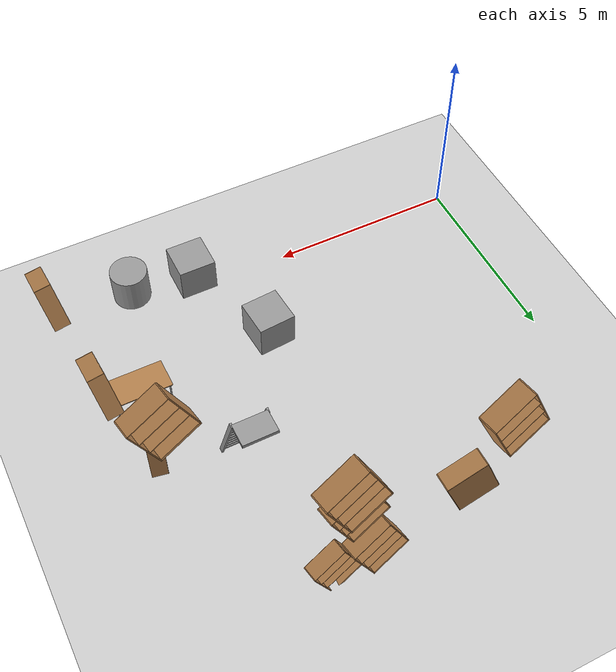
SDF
<sdf version="1.6">
 <world name="default">
  <model name="ground_plane">
   <static>1</static>
   <link name="link">
    <collision name="collision">
     <geometry><plane><normal>0 0 1</normal><size>100 100</size></plane></geometry>
     <surface><friction><ode><mu>100</mu><mu2>50</mu2></ode></friction></surface>
    </collision>
    <visual name="visual">
     <cast_shadows>0</cast_shadows>
     <geometry><plane><normal>0 0 1</normal><size>100 100</size></plane></geometry>
     <material>
      <script><uri>file://media/materials/scripts/gazebo.material</uri><name>Gazebo/Grey</name></script>
     </material>
    </visual>
   </link>
  </model>
  <model name="bookshelf_1">
   <static>1</static>
   <link name="link">
    <inertial><mass>1</mass></inertial>
    <collision name="back">
     <pose>0 0.005 0.6 0 -0 0</pose>
     <geometry><box><size>0.9 0.01 1.2</size></box></geometry>
    </collision>
    <visual name="visual1">
     <pose>0 0.005 0.6 0 -0 0</pose>
     <geometry><box><size>0.9 0.01 1.2</size></box></geometry>
     <material>
      <script><uri>file://media/materials/scripts/gazebo.material</uri><name>Gazebo/Wood</name></script>
     </material>
    </visual>
    <collision name="left_side">
     <pose>0.45 -0.195 0.6 0 -0 0</pose>
     <geometry><box><size>0.02 0.4 1.2</size></box></geometry>
    </collision>
    <visual name="visual2">
     <pose>0.45 -0.195 0.6 0 -0 0</pose>
     <geometry><box><size>0.02 0.4 1.2</size></box></geometry>
     <material>
      <script><uri>file://media/materials/scripts/gazebo.material</uri><name>Gazebo/Wood</name></script>
     </material>
    </visual>
    <collision name="right_side">
     <pose>-0.45 -0.195 0.6 0 -0 0</pose>
     <geometry><box><size>0.02 0.4 1.2</size></box></geometry>
    </collision>
    <visual name="visual3">
     <pose>-0.45 -0.195 0.6 0 -0 0</pose>
     <geometry><box><size>0.02 0.4 1.2</size></box></geometry>
     <material>
      <script><uri>file://media/materials/scripts/gazebo.material</uri><name>Gazebo/Wood</name></script>
     </material>
    </visual>
    <collision name="bottom">
     <pose>0 -0.195 0.03 0 -0 0</pose>
     <geometry><box><size>0.88 0.4 0.06</size></box></geometry>
    </collision>
    <visual name="visual4">
     <pose>0 -0.195 0.03 0 -0 0</pose>
     <geometry><box><size>0.88 0.4 0.06</size></box></geometry>
     <material>
      <script><uri>file://media/materials/scripts/gazebo.material</uri><name>Gazebo/Wood</name></script>
     </material>
    </visual>
    <collision name="top">
     <pose>0 -0.195 1.19 0 -0 0</pose>
     <geometry><box><size>0.88 0.4 0.02</size></box></geometry>
    </collision>
    <visual name="visual5">
     <pose>0 -0.195 1.19 0 -0 0</pose>
     <geometry><box><size>0.88 0.4 0.02</size></box></geometry>
     <material>
      <script><uri>file://media/materials/scripts/gazebo.material</uri><name>Gazebo/Wood</name></script>
     </material>
    </visual>
    <collision name="low_shelf">
     <pose>0 -0.195 0.43 0 -0 0</pose>
     <geometry><box><size>0.88 0.4 0.02</size></box></geometry>
    </collision>
    <visual name="visual6">
     <pose>0 -0.195 0.43 0 -0 0</pose>
     <geometry><box><size>0.88 0.4 0.02</size></box></geometry>
     <material>
      <script><uri>file://media/materials/scripts/gazebo.material</uri><name>Gazebo/Wood</name></script>
     </material>
    </visual>
    <collision name="high_shelf">
     <pose>0 -0.195 0.8 0 -0 0</pose>
     <geometry><box><size>0.88 0.4 0.02</size></box></geometry>
    </collision>
    <visual name="visual7">
     <pose>0 -0.195 0.8 0 -0 0</pose>
     <geometry><box><size>0.88 0.4 0.02</size></box></geometry>
     <material>
      <script><uri>file://media/materials/scripts/gazebo.material</uri><name>Gazebo/Wood</name></script>
     </material>
    </visual>
   </link>
   <pose>10.3942 4.67177 0.408899 0 -0 1.38737</pose>
  </model>
  <model name="unit_cylinder_0">
   <pose>9.25384 -0.552257 0.599997 1e-06 -6e-06 -4e-06</pose>
   <link name="link">
    <inertial>
     <mass>1</mass>
     <inertia><ixx>0.145833</ixx><ixy>0</ixy><ixz>0</ixz><iyy>0.145833</iyy><iyz>0</iyz><izz>0.125</izz></inertia>
    </inertial>
    <collision name="collision">
     <geometry><cylinder><radius>0.5</radius><length>1</length></cylinder></geometry>
    </collision>
    <visual name="visual">
     <geometry><cylinder><radius>0.5</radius><length>1</length></cylinder></geometry>
     <material>
      <script><name>Gazebo/Grey</name><uri>file://media/materials/scripts/gazebo.material</uri></script>
     </material>
    </visual>
   </link>
  </model>
  <model name="unit_box_1">
   <pose>7.5557 -0.384147 0.499995 1e-05 -0 -2.4e-05</pose>
   <link name="link">
    <inertial>
     <mass>1</mass>
     <inertia>
      <ixx>0.166667</ixx>
      <ixy>0</ixy>
      <ixz>0</ixz>
      <iyy>0.166667</iyy>
      <iyz>0</iyz>
      <izz>0.166667</izz>
     </inertia>
    </inertial>
    <collision name="collision"><geometry><box><size>1 1 1</size></box></geometry></collision>
    <visual name="visual">
     <geometry><box><size>1 1 1</size></box></geometry>
     <material>
      <script><name>Gazebo/Grey</name><uri>file://media/materials/scripts/gazebo.material</uri></script>
     </material>
    </visual>
   </link>
  </model>
  <model name="bookshelf_0_clone_0">
   <static>1</static>
   <link name="link">
    <inertial><mass>1</mass></inertial>
    <collision name="back">
     <pose>0 0.005 0.6 0 -0 0</pose>
     <geometry><box><size>0.9 0.01 1.2</size></box></geometry>
    </collision>
    <visual name="visual1">
     <pose>0 0.005 0.6 0 -0 0</pose>
     <geometry><box><size>0.9 0.01 1.2</size></box></geometry>
     <material>
      <script><uri>file://media/materials/scripts/gazebo.material</uri><name>Gazebo/Wood</name></script>
     </material>
    </visual>
    <collision name="left_side">
     <pose>0.45 -0.195 0.6 0 -0 0</pose>
     <geometry><box><size>0.02 0.4 1.2</size></box></geometry>
    </collision>
    <visual name="visual2">
     <pose>0.45 -0.195 0.6 0 -0 0</pose>
     <geometry><box><size>0.02 0.4 1.2</size></box></geometry>
     <material>
      <script><uri>file://media/materials/scripts/gazebo.material</uri><name>Gazebo/Wood</name></script>
     </material>
    </visual>
    <collision name="right_side">
     <pose>-0.45 -0.195 0.6 0 -0 0</pose>
     <geometry><box><size>0.02 0.4 1.2</size></box></geometry>
    </collision>
    <visual name="visual3">
     <pose>-0.45 -0.195 0.6 0 -0 0</pose>
     <geometry><box><size>0.02 0.4 1.2</size></box></geometry>
     <material>
      <script><uri>file://media/materials/scripts/gazebo.material</uri><name>Gazebo/Wood</name></script>
     </material>
    </visual>
    <collision name="bottom">
     <pose>0 -0.195 0.03 0 -0 0</pose>
     <geometry><box><size>0.88 0.4 0.06</size></box></geometry>
    </collision>
    <visual name="visual4">
     <pose>0 -0.195 0.03 0 -0 0</pose>
     <geometry><box><size>0.88 0.4 0.06</size></box></geometry>
     <material>
      <script><uri>file://media/materials/scripts/gazebo.material</uri><name>Gazebo/Wood</name></script>
     </material>
    </visual>
    <collision name="top">
     <pose>0 -0.195 1.19 0 -0 0</pose>
     <geometry><box><size>0.88 0.4 0.02</size></box></geometry>
    </collision>
    <visual name="visual5">
     <pose>0 -0.195 1.19 0 -0 0</pose>
     <geometry><box><size>0.88 0.4 0.02</size></box></geometry>
     <material>
      <script><uri>file://media/materials/scripts/gazebo.material</uri><name>Gazebo/Wood</name></script>
     </material>
    </visual>
    <collision name="low_shelf">
     <pose>0 -0.195 0.43 0 -0 0</pose>
     <geometry><box><size>0.88 0.4 0.02</size></box></geometry>
    </collision>
    <visual name="visual6">
     <pose>0 -0.195 0.43 0 -0 0</pose>
     <geometry><box><size>0.88 0.4 0.02</size></box></geometry>
     <material>
      <script><uri>file://media/materials/scripts/gazebo.material</uri><name>Gazebo/Wood</name></script>
     </material>
    </visual>
    <collision name="high_shelf">
     <pose>0 -0.195 0.8 0 -0 0</pose>
     <geometry><box><size>0.88 0.4 0.02</size></box></geometry>
    </collision>
    <visual name="visual7">
     <pose>0 -0.195 0.8 0 -0 0</pose>
     <geometry><box><size>0.88 0.4 0.02</size></box></geometry>
     <material>
      <script><uri>file://media/materials/scripts/gazebo.material</uri><name>Gazebo/Wood</name></script>
     </material>
    </visual>
   </link>
   <pose>5.69398 10.33 4.06756 0 0.357608 0</pose>
  </model>
  <model name="unit_box_1_clone">
   <pose>6.48955 2.22059 0.5 0 -0 0.074709</pose>
   <link name="unit_box_1_clone::link">
    <inertial>
     <mass>1</mass>
     <inertia>
      <ixx>0.166667</ixx>
      <ixy>0</ixy>
      <ixz>0</ixz>
      <iyy>0.166667</iyy>
      <iyz>0</iyz>
      <izz>0.166667</izz>
     </inertia>
    </inertial>
    <collision name="collision"><geometry><box><size>1 1 1</size></box></geometry></collision>
    <visual name="visual">
     <geometry><box><size>1 1 1</size></box></geometry>
     <material>
      <script><name>Gazebo/Grey</name><uri>file://media/materials/scripts/gazebo.material</uri></script>
     </material>
    </visual>
   </link>
  </model>
  <model name="bookshelf_0_clone_1_clone_2_clone">
   <static>1</static>
   <link name="link">
    <inertial><mass>1</mass></inertial>
    <collision name="back">
     <pose>0 0.005 0.6 0 -0 0</pose>
     <geometry><box><size>0.9 0.01 1.2</size></box></geometry>
    </collision>
    <visual name="visual1">
     <pose>0 0.005 0.6 0 -0 0</pose>
     <geometry><box><size>0.9 0.01 1.2</size></box></geometry>
     <material>
      <script><uri>file://media/materials/scripts/gazebo.material</uri><name>Gazebo/Wood</name></script>
     </material>
    </visual>
    <collision name="left_side">
     <pose>0.45 -0.195 0.6 0 -0 0</pose>
     <geometry><box><size>0.02 0.4 1.2</size></box></geometry>
    </collision>
    <visual name="visual2">
     <pose>0.45 -0.195 0.6 0 -0 0</pose>
     <geometry><box><size>0.02 0.4 1.2</size></box></geometry>
     <material>
      <script><uri>file://media/materials/scripts/gazebo.material</uri><name>Gazebo/Wood</name></script>
     </material>
    </visual>
    <collision name="right_side">
     <pose>-0.45 -0.195 0.6 0 -0 0</pose>
     <geometry><box><size>0.02 0.4 1.2</size></box></geometry>
    </collision>
    <visual name="visual3">
     <pose>-0.45 -0.195 0.6 0 -0 0</pose>
     <geometry><box><size>0.02 0.4 1.2</size></box></geometry>
     <material>
      <script><uri>file://media/materials/scripts/gazebo.material</uri><name>Gazebo/Wood</name></script>
     </material>
    </visual>
    <collision name="bottom">
     <pose>0 -0.195 0.03 0 -0 0</pose>
     <geometry><box><size>0.88 0.4 0.06</size></box></geometry>
    </collision>
    <visual name="visual4">
     <pose>0 -0.195 0.03 0 -0 0</pose>
     <geometry><box><size>0.88 0.4 0.06</size></box></geometry>
     <material>
      <script><uri>file://media/materials/scripts/gazebo.material</uri><name>Gazebo/Wood</name></script>
     </material>
    </visual>
    <collision name="top">
     <pose>0 -0.195 1.19 0 -0 0</pose>
     <geometry><box><size>0.88 0.4 0.02</size></box></geometry>
    </collision>
    <visual name="visual5">
     <pose>0 -0.195 1.19 0 -0 0</pose>
     <geometry><box><size>0.88 0.4 0.02</size></box></geometry>
     <material>
      <script><uri>file://media/materials/scripts/gazebo.material</uri><name>Gazebo/Wood</name></script>
     </material>
    </visual>
    <collision name="low_shelf">
     <pose>0 -0.195 0.43 0 -0 0</pose>
     <geometry><box><size>0.88 0.4 0.02</size></box></geometry>
    </collision>
    <visual name="visual6">
     <pose>0 -0.195 0.43 0 -0 0</pose>
     <geometry><box><size>0.88 0.4 0.02</size></box></geometry>
     <material>
      <script><uri>file://media/materials/scripts/gazebo.material</uri><name>Gazebo/Wood</name></script>
     </material>
    </visual>
    <collision name="high_shelf">
     <pose>0 -0.195 0.8 0 -0 0</pose>
     <geometry><box><size>0.88 0.4 0.02</size></box></geometry>
    </collision>
    <visual name="visual7">
     <pose>0 -0.195 0.8 0 -0 0</pose>
     <geometry><box><size>0.88 0.4 0.02</size></box></geometry>
     <material>
      <script><uri>file://media/materials/scripts/gazebo.material</uri><name>Gazebo/Wood</name></script>
     </material>
    </visual>
   </link>
   <pose>11.3251 1.36662 2.70391 0.126952 -0.31446 1.5878</pose>
  </model>
  <model name="bookshelf_0_clone_1_clone_2_clone_0">
   <static>1</static>
   <link name="link">
    <inertial><mass>1</mass></inertial>
    <collision name="back">
     <pose>0 0.005 0.6 0 -0 0</pose>
     <geometry><box><size>0.9 0.01 1.2</size></box></geometry>
    </collision>
    <visual name="visual1">
     <pose>0 0.005 0.6 0 -0 0</pose>
     <geometry><box><size>0.9 0.01 1.2</size></box></geometry>
     <material>
      <script><uri>file://media/materials/scripts/gazebo.material</uri><name>Gazebo/Wood</name></script>
     </material>
    </visual>
    <collision name="left_side">
     <pose>0.45 -0.195 0.6 0 -0 0</pose>
     <geometry><box><size>0.02 0.4 1.2</size></box></geometry>
    </collision>
    <visual name="visual2">
     <pose>0.45 -0.195 0.6 0 -0 0</pose>
     <geometry><box><size>0.02 0.4 1.2</size></box></geometry>
     <material>
      <script><uri>file://media/materials/scripts/gazebo.material</uri><name>Gazebo/Wood</name></script>
     </material>
    </visual>
    <collision name="right_side">
     <pose>-0.45 -0.195 0.6 0 -0 0</pose>
     <geometry><box><size>0.02 0.4 1.2</size></box></geometry>
    </collision>
    <visual name="visual3">
     <pose>-0.45 -0.195 0.6 0 -0 0</pose>
     <geometry><box><size>0.02 0.4 1.2</size></box></geometry>
     <material>
      <script><uri>file://media/materials/scripts/gazebo.material</uri><name>Gazebo/Wood</name></script>
     </material>
    </visual>
    <collision name="bottom">
     <pose>0 -0.195 0.03 0 -0 0</pose>
     <geometry><box><size>0.88 0.4 0.06</size></box></geometry>
    </collision>
    <visual name="visual4">
     <pose>0 -0.195 0.03 0 -0 0</pose>
     <geometry><box><size>0.88 0.4 0.06</size></box></geometry>
     <material>
      <script><uri>file://media/materials/scripts/gazebo.material</uri><name>Gazebo/Wood</name></script>
     </material>
    </visual>
    <collision name="top">
     <pose>0 -0.195 1.19 0 -0 0</pose>
     <geometry><box><size>0.88 0.4 0.02</size></box></geometry>
    </collision>
    <visual name="visual5">
     <pose>0 -0.195 1.19 0 -0 0</pose>
     <geometry><box><size>0.88 0.4 0.02</size></box></geometry>
     <material>
      <script><uri>file://media/materials/scripts/gazebo.material</uri><name>Gazebo/Wood</name></script>
     </material>
    </visual>
    <collision name="low_shelf">
     <pose>0 -0.195 0.43 0 -0 0</pose>
     <geometry><box><size>0.88 0.4 0.02</size></box></geometry>
    </collision>
    <visual name="visual6">
     <pose>0 -0.195 0.43 0 -0 0</pose>
     <geometry><box><size>0.88 0.4 0.02</size></box></geometry>
     <material>
      <script><uri>file://media/materials/scripts/gazebo.material</uri><name>Gazebo/Wood</name></script>
     </material>
    </visual>
    <collision name="high_shelf">
     <pose>0 -0.195 0.8 0 -0 0</pose>
     <geometry><box><size>0.88 0.4 0.02</size></box></geometry>
    </collision>
    <visual name="visual7">
     <pose>0 -0.195 0.8 0 -0 0</pose>
     <geometry><box><size>0.88 0.4 0.02</size></box></geometry>
     <material>
      <script><uri>file://media/materials/scripts/gazebo.material</uri><name>Gazebo/Wood</name></script>
     </material>
    </visual>
   </link>
   <pose>11.0686 4.1971 2.70391 0.126952 -0.31446 1.5878</pose>
  </model>
  <model name="table">
   <static>1</static>
   <link name="link">
    <collision name="surface">
     <pose>0 0 1 0 -0 0</pose>
     <geometry><box><size>1.5 0.8 0.03</size></box></geometry>
     <surface><friction><ode><mu>0.6</mu><mu2>0.6</mu2></ode></friction></surface>
    </collision>
    <visual name="visual1">
     <pose>0 0 1 0 -0 0</pose>
     <geometry><box><size>1.5 0.8 0.03</size></box></geometry>
     <material>
      <script><uri>file://media/materials/scripts/gazebo.material</uri><name>Gazebo/Wood</name></script>
     </material>
    </visual>
    <collision name="front_left_leg">
     <pose>0.68 0.38 0.5 0 -0 0</pose>
     <geometry><cylinder><radius>0.02</radius><length>1</length></cylinder></geometry>
    </collision>
    <visual name="front_left_leg">
     <pose>0.68 0.38 0.5 0 -0 0</pose>
     <geometry><cylinder><radius>0.02</radius><length>1</length></cylinder></geometry>
     <material>
      <script><uri>file://media/materials/scripts/gazebo.material</uri><name>Gazebo/Grey</name></script>
     </material>
    </visual>
    <collision name="front_right_leg">
     <pose>0.68 -0.38 0.5 0 -0 0</pose>
     <geometry><cylinder><radius>0.02</radius><length>1</length></cylinder></geometry>
    </collision>
    <visual name="front_right_leg">
     <pose>0.68 -0.38 0.5 0 -0 0</pose>
     <geometry><cylinder><radius>0.02</radius><length>1</length></cylinder></geometry>
     <material>
      <script><uri>file://media/materials/scripts/gazebo.material</uri><name>Gazebo/Grey</name></script>
     </material>
    </visual>
    <collision name="back_right_leg">
     <pose>-0.68 -0.38 0.5 0 -0 0</pose>
     <geometry><cylinder><radius>0.02</radius><length>1</length></cylinder></geometry>
    </collision>
    <visual name="back_right_leg">
     <pose>-0.68 -0.38 0.5 0 -0 0</pose>
     <geometry><cylinder><radius>0.02</radius><length>1</length></cylinder></geometry>
     <material>
      <script><uri>file://media/materials/scripts/gazebo.material</uri><name>Gazebo/Grey</name></script>
     </material>
    </visual>
    <collision name="back_left_leg">
     <pose>-0.68 0.38 0.5 0 -0 0</pose>
     <geometry><cylinder><radius>0.02</radius><length>1</length></cylinder></geometry>
    </collision>
    <visual name="back_left_leg">
     <pose>-0.68 0.38 0.5 0 -0 0</pose>
     <geometry><cylinder><radius>0.02</radius><length>1</length></cylinder></geometry>
     <material>
      <script><uri>file://media/materials/scripts/gazebo.material</uri><name>Gazebo/Grey</name></script>
     </material>
    </visual>
   </link>
   <pose>10.2814 2.83475 0 0 -0 0</pose>
  </model>
  <model name="ladder_70deg_0rails">
   <static>1</static>
   <link name="step0">
    <pose>0 0.097059 0.266667 0 -0 0</pose>
    <inertial>
     <mass>9.75482</mass>
     <inertia>
      <ixx>0.00957124</ixx>
      <iyy>0.65963</iyy>
      <izz>0.666842</izz>
      <ixy>0</ixy>
      <ixz>0</ixz>
      <iyz>0</iyz>
     </inertia>
    </inertial>
    <collision name="collision"><geometry><box><size>0.9 0.1016 0.0381</size></box></geometry></collision>
    <visual name="visual">
     <geometry><box><size>0.9 0.1016 0.0381</size></box></geometry>
     <material>
      <script><uri>file://media/materials/scripts/gazebo.material</uri><name>Gazebo/Grey</name></script>
     </material>
    </visual>
   </link>
   <link name="step1">
    <pose>0 0.194117 0.533333 0 -0 0</pose>
    <inertial>
     <mass>9.75482</mass>
     <inertia>
      <ixx>0.00957124</ixx>
      <iyy>0.65963</iyy>
      <izz>0.666842</izz>
      <ixy>0</ixy>
      <ixz>0</ixz>
      <iyz>0</iyz>
     </inertia>
    </inertial>
    <collision name="collision"><geometry><box><size>0.9 0.1016 0.0381</size></box></geometry></collision>
    <visual name="visual">
     <geometry><box><size>0.9 0.1016 0.0381</size></box></geometry>
     <material>
      <script><uri>file://media/materials/scripts/gazebo.material</uri><name>Gazebo/Grey</name></script>
     </material>
    </visual>
   </link>
   <link name="step2">
    <pose>0 0.291176 0.8 0 -0 0</pose>
    <inertial>
     <mass>9.75482</mass>
     <inertia>
      <ixx>0.00957124</ixx>
      <iyy>0.65963</iyy>
      <izz>0.666842</izz>
      <ixy>0</ixy>
      <ixz>0</ixz>
      <iyz>0</iyz>
     </inertia>
    </inertial>
    <collision name="collision"><geometry><box><size>0.9 0.1016 0.0381</size></box></geometry></collision>
    <visual name="visual">
     <geometry><box><size>0.9 0.1016 0.0381</size></box></geometry>
     <material>
      <script><uri>file://media/materials/scripts/gazebo.material</uri><name>Gazebo/Grey</name></script>
     </material>
    </visual>
   </link>
   <link name="step3">
    <pose>0 0.388235 1.06667 0 -0 0</pose>
    <inertial>
     <mass>9.75482</mass>
     <inertia>
      <ixx>0.00957124</ixx>
      <iyy>0.65963</iyy>
      <izz>0.666842</izz>
      <ixy>0</ixy>
      <ixz>0</ixz>
      <iyz>0</iyz>
     </inertia>
    </inertial>
    <collision name="collision"><geometry><box><size>0.9 0.1016 0.0381</size></box></geometry></collision>
    <visual name="visual">
     <geometry><box><size>0.9 0.1016 0.0381</size></box></geometry>
     <material>
      <script><uri>file://media/materials/scripts/gazebo.material</uri><name>Gazebo/Grey</name></script>
     </material>
    </visual>
   </link>
   <link name="step4">
    <pose>0 0.485294 1.33333 0 -0 0</pose>
    <inertial>
     <mass>9.75482</mass>
     <inertia>
      <ixx>0.00957124</ixx>
      <iyy>0.65963</iyy>
      <izz>0.666842</izz>
      <ixy>0</ixy>
      <ixz>0</ixz>
      <iyz>0</iyz>
     </inertia>
    </inertial>
    <collision name="collision"><geometry><box><size>0.9 0.1016 0.0381</size></box></geometry></collision>
    <visual name="visual">
     <geometry><box><size>0.9 0.1016 0.0381</size></box></geometry>
     <material>
      <script><uri>file://media/materials/scripts/gazebo.material</uri><name>Gazebo/Grey</name></script>
     </material>
    </visual>
   </link>
   <link name="step5">
    <pose>0 0.582352 1.6 0 -0 0</pose>
    <inertial>
     <mass>9.75482</mass>
     <inertia>
      <ixx>0.00957124</ixx>
      <iyy>0.65963</iyy>
      <izz>0.666842</izz>
      <ixy>0</ixy>
      <ixz>0</ixz>
      <iyz>0</iyz>
     </inertia>
    </inertial>
    <collision name="collision"><geometry><box><size>0.9 0.1016 0.0381</size></box></geometry></collision>
    <visual name="visual">
     <geometry><box><size>0.9 0.1016 0.0381</size></box></geometry>
     <material>
      <script><uri>file://media/materials/scripts/gazebo.material</uri><name>Gazebo/Grey</name></script>
     </material>
    </visual>
   </link>
   <link name="step6">
    <pose>0 0.679411 1.86667 0 -0 0</pose>
    <inertial>
     <mass>9.75482</mass>
     <inertia>
      <ixx>0.00957124</ixx>
      <iyy>0.65963</iyy>
      <izz>0.666842</izz>
      <ixy>0</ixy>
      <ixz>0</ixz>
      <iyz>0</iyz>
     </inertia>
    </inertial>
    <collision name="collision"><geometry><box><size>0.9 0.1016 0.0381</size></box></geometry></collision>
    <visual name="visual">
     <geometry><box><size>0.9 0.1016 0.0381</size></box></geometry>
     <material>
      <script><uri>file://media/materials/scripts/gazebo.material</uri><name>Gazebo/Grey</name></script>
     </material>
    </visual>
   </link>
   <link name="step7">
    <pose>0 0.77647 2.13333 0 -0 0</pose>
    <inertial>
     <mass>9.75482</mass>
     <inertia>
      <ixx>0.00957124</ixx>
      <iyy>0.65963</iyy>
      <izz>0.666842</izz>
      <ixy>0</ixy>
      <ixz>0</ixz>
      <iyz>0</iyz>
     </inertia>
    </inertial>
    <collision name="collision"><geometry><box><size>0.9 0.1016 0.0381</size></box></geometry></collision>
    <visual name="visual">
     <geometry><box><size>0.9 0.1016 0.0381</size></box></geometry>
     <material>
      <script><uri>file://media/materials/scripts/gazebo.material</uri><name>Gazebo/Grey</name></script>
     </material>
    </visual>
   </link>
   <link name="landing">
    <pose>0 1.17353 2.4 0 -0 0</pose>
    <inertial>
     <mass>57.6072</mass>
     <inertia><ixx>1.73518</ixx><iyy>3.89545</iyy><izz>5.6167</izz><ixy>0</ixy><ixz>0</ixz><iyz>0</iyz></inertia>
    </inertial>
    <collision name="collision"><geometry><box><size>0.9 0.6 0.1016</size></box></geometry></collision>
    <visual name="visual">
     <geometry><box><size>0.9 0.6 0.1016</size></box></geometry>
     <material>
      <script><uri>file://media/materials/scripts/gazebo.material</uri><name>Gazebo/Grey</name></script>
     </material>
    </visual>
   </link>
   <link name="left_side_wall">
    <pose>-0.45 0.436764 1.2 1.22173 -0 0</pose>
    <collision name="collision"><geometry><box><size>0.0508 2.63403 0.13</size></box></geometry></collision>
    <visual name="visual">
     <geometry><box><size>0.0508 2.63403 0.13</size></box></geometry>
     <material>
      <script><uri>file://media/materials/scripts/gazebo.material</uri><name>Gazebo/Grey</name></script>
     </material>
    </visual>
   </link>
   <link name="right_side_wall">
    <pose>0.45 0.436764 1.2 1.22173 -0 0</pose>
    <collision name="collision"><geometry><box><size>0.0508 2.63403 0.13</size></box></geometry></collision>
    <visual name="visual">
     <geometry><box><size>0.0508 2.63403 0.13</size></box></geometry>
     <material>
      <script><uri>file://media/materials/scripts/gazebo.material</uri><name>Gazebo/Grey</name></script>
     </material>
    </visual>
   </link>
   <pose>8.57354 4.87468 0 0 -0 0</pose>
  </model>
  <model name="bookshelf_2_clone_3">
   <static>1</static>
   <link name="link">
    <inertial><mass>1</mass></inertial>
    <collision name="back">
     <pose>0 0.005 0.6 0 -0 0</pose>
     <geometry><box><size>0.9 0.01 1.2</size></box></geometry>
    </collision>
    <visual name="visual1">
     <pose>0 0.005 0.6 0 -0 0</pose>
     <geometry><box><size>0.9 0.01 1.2</size></box></geometry>
     <material>
      <script><uri>file://media/materials/scripts/gazebo.material</uri><name>Gazebo/Wood</name></script>
     </material>
    </visual>
    <collision name="left_side">
     <pose>0.45 -0.195 0.6 0 -0 0</pose>
     <geometry><box><size>0.02 0.4 1.2</size></box></geometry>
    </collision>
    <visual name="visual2">
     <pose>0.45 -0.195 0.6 0 -0 0</pose>
     <geometry><box><size>0.02 0.4 1.2</size></box></geometry>
     <material>
      <script><uri>file://media/materials/scripts/gazebo.material</uri><name>Gazebo/Wood</name></script>
     </material>
    </visual>
    <collision name="right_side">
     <pose>-0.45 -0.195 0.6 0 -0 0</pose>
     <geometry><box><size>0.02 0.4 1.2</size></box></geometry>
    </collision>
    <visual name="visual3">
     <pose>-0.45 -0.195 0.6 0 -0 0</pose>
     <geometry><box><size>0.02 0.4 1.2</size></box></geometry>
     <material>
      <script><uri>file://media/materials/scripts/gazebo.material</uri><name>Gazebo/Wood</name></script>
     </material>
    </visual>
    <collision name="bottom">
     <pose>0 -0.195 0.03 0 -0 0</pose>
     <geometry><box><size>0.88 0.4 0.06</size></box></geometry>
    </collision>
    <visual name="visual4">
     <pose>0 -0.195 0.03 0 -0 0</pose>
     <geometry><box><size>0.88 0.4 0.06</size></box></geometry>
     <material>
      <script><uri>file://media/materials/scripts/gazebo.material</uri><name>Gazebo/Wood</name></script>
     </material>
    </visual>
    <collision name="top">
     <pose>0 -0.195 1.19 0 -0 0</pose>
     <geometry><box><size>0.88 0.4 0.02</size></box></geometry>
    </collision>
    <visual name="visual5">
     <pose>0 -0.195 1.19 0 -0 0</pose>
     <geometry><box><size>0.88 0.4 0.02</size></box></geometry>
     <material>
      <script><uri>file://media/materials/scripts/gazebo.material</uri><name>Gazebo/Wood</name></script>
     </material>
    </visual>
    <collision name="low_shelf">
     <pose>0 -0.195 0.43 0 -0 0</pose>
     <geometry><box><size>0.88 0.4 0.02</size></box></geometry>
    </collision>
    <visual name="visual6">
     <pose>0 -0.195 0.43 0 -0 0</pose>
     <geometry><box><size>0.88 0.4 0.02</size></box></geometry>
     <material>
      <script><uri>file://media/materials/scripts/gazebo.material</uri><name>Gazebo/Wood</name></script>
     </material>
    </visual>
    <collision name="high_shelf">
     <pose>0 -0.195 0.8 0 -0 0</pose>
     <geometry><box><size>0.88 0.4 0.02</size></box></geometry>
    </collision>
    <visual name="visual7">
     <pose>0 -0.195 0.8 0 -0 0</pose>
     <geometry><box><size>0.88 0.4 0.02</size></box></geometry>
     <material>
      <script><uri>file://media/materials/scripts/gazebo.material</uri><name>Gazebo/Wood</name></script>
     </material>
    </visual>
   </link>
   <pose>7.78565 10.1238 3.65744 -0.077915 -0.400957 -2.94416</pose>
  </model>
  <model name="bookshelf_2_clone_8">
   <static>1</static>
   <link name="link">
    <inertial><mass>1</mass></inertial>
    <collision name="back">
     <pose>0 0.005 0.6 0 -0 0</pose>
     <geometry><box><size>0.9 0.01 1.2</size></box></geometry>
    </collision>
    <visual name="visual1">
     <pose>0 0.005 0.6 0 -0 0</pose>
     <geometry><box><size>0.9 0.01 1.2</size></box></geometry>
     <material>
      <script><uri>file://media/materials/scripts/gazebo.material</uri><name>Gazebo/Wood</name></script>
     </material>
    </visual>
    <collision name="left_side">
     <pose>0.45 -0.195 0.6 0 -0 0</pose>
     <geometry><box><size>0.02 0.4 1.2</size></box></geometry>
    </collision>
    <visual name="visual2">
     <pose>0.45 -0.195 0.6 0 -0 0</pose>
     <geometry><box><size>0.02 0.4 1.2</size></box></geometry>
     <material>
      <script><uri>file://media/materials/scripts/gazebo.material</uri><name>Gazebo/Wood</name></script>
     </material>
    </visual>
    <collision name="right_side">
     <pose>-0.45 -0.195 0.6 0 -0 0</pose>
     <geometry><box><size>0.02 0.4 1.2</size></box></geometry>
    </collision>
    <visual name="visual3">
     <pose>-0.45 -0.195 0.6 0 -0 0</pose>
     <geometry><box><size>0.02 0.4 1.2</size></box></geometry>
     <material>
      <script><uri>file://media/materials/scripts/gazebo.material</uri><name>Gazebo/Wood</name></script>
     </material>
    </visual>
    <collision name="bottom">
     <pose>0 -0.195 0.03 0 -0 0</pose>
     <geometry><box><size>0.88 0.4 0.06</size></box></geometry>
    </collision>
    <visual name="visual4">
     <pose>0 -0.195 0.03 0 -0 0</pose>
     <geometry><box><size>0.88 0.4 0.06</size></box></geometry>
     <material>
      <script><uri>file://media/materials/scripts/gazebo.material</uri><name>Gazebo/Wood</name></script>
     </material>
    </visual>
    <collision name="top">
     <pose>0 -0.195 1.19 0 -0 0</pose>
     <geometry><box><size>0.88 0.4 0.02</size></box></geometry>
    </collision>
    <visual name="visual5">
     <pose>0 -0.195 1.19 0 -0 0</pose>
     <geometry><box><size>0.88 0.4 0.02</size></box></geometry>
     <material>
      <script><uri>file://media/materials/scripts/gazebo.material</uri><name>Gazebo/Wood</name></script>
     </material>
    </visual>
    <collision name="low_shelf">
     <pose>0 -0.195 0.43 0 -0 0</pose>
     <geometry><box><size>0.88 0.4 0.02</size></box></geometry>
    </collision>
    <visual name="visual6">
     <pose>0 -0.195 0.43 0 -0 0</pose>
     <geometry><box><size>0.88 0.4 0.02</size></box></geometry>
     <material>
      <script><uri>file://media/materials/scripts/gazebo.material</uri><name>Gazebo/Wood</name></script>
     </material>
    </visual>
    <collision name="high_shelf">
     <pose>0 -0.195 0.8 0 -0 0</pose>
     <geometry><box><size>0.88 0.4 0.02</size></box></geometry>
    </collision>
    <visual name="visual7">
     <pose>0 -0.195 0.8 0 -0 0</pose>
     <geometry><box><size>0.88 0.4 0.02</size></box></geometry>
     <material>
      <script><uri>file://media/materials/scripts/gazebo.material</uri><name>Gazebo/Wood</name></script>
     </material>
    </visual>
   </link>
   <pose>8.23776 10.0119 5.24739 -0.077915 -0.400957 -2.94416</pose>
  </model>
  <model name="bookshelf_2_clone_9">
   <static>1</static>
   <link name="link">
    <inertial><mass>1</mass></inertial>
    <collision name="back">
     <pose>0 0.005 0.6 0 -0 0</pose>
     <geometry><box><size>0.9 0.01 1.2</size></box></geometry>
    </collision>
    <visual name="visual1">
     <pose>0 0.005 0.6 0 -0 0</pose>
     <geometry><box><size>0.9 0.01 1.2</size></box></geometry>
     <material>
      <script><uri>file://media/materials/scripts/gazebo.material</uri><name>Gazebo/Wood</name></script>
     </material>
    </visual>
    <collision name="left_side">
     <pose>0.45 -0.195 0.6 0 -0 0</pose>
     <geometry><box><size>0.02 0.4 1.2</size></box></geometry>
    </collision>
    <visual name="visual2">
     <pose>0.45 -0.195 0.6 0 -0 0</pose>
     <geometry><box><size>0.02 0.4 1.2</size></box></geometry>
     <material>
      <script><uri>file://media/materials/scripts/gazebo.material</uri><name>Gazebo/Wood</name></script>
     </material>
    </visual>
    <collision name="right_side">
     <pose>-0.45 -0.195 0.6 0 -0 0</pose>
     <geometry><box><size>0.02 0.4 1.2</size></box></geometry>
    </collision>
    <visual name="visual3">
     <pose>-0.45 -0.195 0.6 0 -0 0</pose>
     <geometry><box><size>0.02 0.4 1.2</size></box></geometry>
     <material>
      <script><uri>file://media/materials/scripts/gazebo.material</uri><name>Gazebo/Wood</name></script>
     </material>
    </visual>
    <collision name="bottom">
     <pose>0 -0.195 0.03 0 -0 0</pose>
     <geometry><box><size>0.88 0.4 0.06</size></box></geometry>
    </collision>
    <visual name="visual4">
     <pose>0 -0.195 0.03 0 -0 0</pose>
     <geometry><box><size>0.88 0.4 0.06</size></box></geometry>
     <material>
      <script><uri>file://media/materials/scripts/gazebo.material</uri><name>Gazebo/Wood</name></script>
     </material>
    </visual>
    <collision name="top">
     <pose>0 -0.195 1.19 0 -0 0</pose>
     <geometry><box><size>0.88 0.4 0.02</size></box></geometry>
    </collision>
    <visual name="visual5">
     <pose>0 -0.195 1.19 0 -0 0</pose>
     <geometry><box><size>0.88 0.4 0.02</size></box></geometry>
     <material>
      <script><uri>file://media/materials/scripts/gazebo.material</uri><name>Gazebo/Wood</name></script>
     </material>
    </visual>
    <collision name="low_shelf">
     <pose>0 -0.195 0.43 0 -0 0</pose>
     <geometry><box><size>0.88 0.4 0.02</size></box></geometry>
    </collision>
    <visual name="visual6">
     <pose>0 -0.195 0.43 0 -0 0</pose>
     <geometry><box><size>0.88 0.4 0.02</size></box></geometry>
     <material>
      <script><uri>file://media/materials/scripts/gazebo.material</uri><name>Gazebo/Wood</name></script>
     </material>
    </visual>
    <collision name="high_shelf">
     <pose>0 -0.195 0.8 0 -0 0</pose>
     <geometry><box><size>0.88 0.4 0.02</size></box></geometry>
    </collision>
    <visual name="visual7">
     <pose>0 -0.195 0.8 0 -0 0</pose>
     <geometry><box><size>0.88 0.4 0.02</size></box></geometry>
     <material>
      <script><uri>file://media/materials/scripts/gazebo.material</uri><name>Gazebo/Wood</name></script>
     </material>
    </visual>
   </link>
   <pose>7.89169 8.79141 0 -0.077915 -0.400957 -2.94416</pose>
  </model>
  <model name="bookshelf_2_clone_clone_1">
   <static>1</static>
   <link name="link">
    <inertial><mass>1</mass></inertial>
    <collision name="back">
     <pose>0 0.005 0.6 0 -0 0</pose>
     <geometry><box><size>0.9 0.01 1.2</size></box></geometry>
    </collision>
    <visual name="visual1">
     <pose>0 0.005 0.6 0 -0 0</pose>
     <geometry><box><size>0.9 0.01 1.2</size></box></geometry>
     <material>
      <script><uri>file://media/materials/scripts/gazebo.material</uri><name>Gazebo/Wood</name></script>
     </material>
    </visual>
    <collision name="left_side">
     <pose>0.45 -0.195 0.6 0 -0 0</pose>
     <geometry><box><size>0.02 0.4 1.2</size></box></geometry>
    </collision>
    <visual name="visual2">
     <pose>0.45 -0.195 0.6 0 -0 0</pose>
     <geometry><box><size>0.02 0.4 1.2</size></box></geometry>
     <material>
      <script><uri>file://media/materials/scripts/gazebo.material</uri><name>Gazebo/Wood</name></script>
     </material>
    </visual>
    <collision name="right_side">
     <pose>-0.45 -0.195 0.6 0 -0 0</pose>
     <geometry><box><size>0.02 0.4 1.2</size></box></geometry>
    </collision>
    <visual name="visual3">
     <pose>-0.45 -0.195 0.6 0 -0 0</pose>
     <geometry><box><size>0.02 0.4 1.2</size></box></geometry>
     <material>
      <script><uri>file://media/materials/scripts/gazebo.material</uri><name>Gazebo/Wood</name></script>
     </material>
    </visual>
    <collision name="bottom">
     <pose>0 -0.195 0.03 0 -0 0</pose>
     <geometry><box><size>0.88 0.4 0.06</size></box></geometry>
    </collision>
    <visual name="visual4">
     <pose>0 -0.195 0.03 0 -0 0</pose>
     <geometry><box><size>0.88 0.4 0.06</size></box></geometry>
     <material>
      <script><uri>file://media/materials/scripts/gazebo.material</uri><name>Gazebo/Wood</name></script>
     </material>
    </visual>
    <collision name="top">
     <pose>0 -0.195 1.19 0 -0 0</pose>
     <geometry><box><size>0.88 0.4 0.02</size></box></geometry>
    </collision>
    <visual name="visual5">
     <pose>0 -0.195 1.19 0 -0 0</pose>
     <geometry><box><size>0.88 0.4 0.02</size></box></geometry>
     <material>
      <script><uri>file://media/materials/scripts/gazebo.material</uri><name>Gazebo/Wood</name></script>
     </material>
    </visual>
    <collision name="low_shelf">
     <pose>0 -0.195 0.43 0 -0 0</pose>
     <geometry><box><size>0.88 0.4 0.02</size></box></geometry>
    </collision>
    <visual name="visual6">
     <pose>0 -0.195 0.43 0 -0 0</pose>
     <geometry><box><size>0.88 0.4 0.02</size></box></geometry>
     <material>
      <script><uri>file://media/materials/scripts/gazebo.material</uri><name>Gazebo/Wood</name></script>
     </material>
    </visual>
    <collision name="high_shelf">
     <pose>0 -0.195 0.8 0 -0 0</pose>
     <geometry><box><size>0.88 0.4 0.02</size></box></geometry>
    </collision>
    <visual name="visual7">
     <pose>0 -0.195 0.8 0 -0 0</pose>
     <geometry><box><size>0.88 0.4 0.02</size></box></geometry>
     <material>
      <script><uri>file://media/materials/scripts/gazebo.material</uri><name>Gazebo/Wood</name></script>
     </material>
    </visual>
   </link>
   <pose>5.69023 10.6338 7.27061 -0.077915 -0.400957 -2.94416</pose>
  </model>
  <model name="bookshelf_2_clone_clone_2">
   <static>1</static>
   <link name="link">
    <inertial><mass>1</mass></inertial>
    <collision name="back">
     <pose>0 0.005 0.6 0 -0 0</pose>
     <geometry><box><size>0.9 0.01 1.2</size></box></geometry>
    </collision>
    <visual name="visual1">
     <pose>0 0.005 0.6 0 -0 0</pose>
     <geometry><box><size>0.9 0.01 1.2</size></box></geometry>
     <material>
      <script><uri>file://media/materials/scripts/gazebo.material</uri><name>Gazebo/Wood</name></script>
     </material>
    </visual>
    <collision name="left_side">
     <pose>0.45 -0.195 0.6 0 -0 0</pose>
     <geometry><box><size>0.02 0.4 1.2</size></box></geometry>
    </collision>
    <visual name="visual2">
     <pose>0.45 -0.195 0.6 0 -0 0</pose>
     <geometry><box><size>0.02 0.4 1.2</size></box></geometry>
     <material>
      <script><uri>file://media/materials/scripts/gazebo.material</uri><name>Gazebo/Wood</name></script>
     </material>
    </visual>
    <collision name="right_side">
     <pose>-0.45 -0.195 0.6 0 -0 0</pose>
     <geometry><box><size>0.02 0.4 1.2</size></box></geometry>
    </collision>
    <visual name="visual3">
     <pose>-0.45 -0.195 0.6 0 -0 0</pose>
     <geometry><box><size>0.02 0.4 1.2</size></box></geometry>
     <material>
      <script><uri>file://media/materials/scripts/gazebo.material</uri><name>Gazebo/Wood</name></script>
     </material>
    </visual>
    <collision name="bottom">
     <pose>0 -0.195 0.03 0 -0 0</pose>
     <geometry><box><size>0.88 0.4 0.06</size></box></geometry>
    </collision>
    <visual name="visual4">
     <pose>0 -0.195 0.03 0 -0 0</pose>
     <geometry><box><size>0.88 0.4 0.06</size></box></geometry>
     <material>
      <script><uri>file://media/materials/scripts/gazebo.material</uri><name>Gazebo/Wood</name></script>
     </material>
    </visual>
    <collision name="top">
     <pose>0 -0.195 1.19 0 -0 0</pose>
     <geometry><box><size>0.88 0.4 0.02</size></box></geometry>
    </collision>
    <visual name="visual5">
     <pose>0 -0.195 1.19 0 -0 0</pose>
     <geometry><box><size>0.88 0.4 0.02</size></box></geometry>
     <material>
      <script><uri>file://media/materials/scripts/gazebo.material</uri><name>Gazebo/Wood</name></script>
     </material>
    </visual>
    <collision name="low_shelf">
     <pose>0 -0.195 0.43 0 -0 0</pose>
     <geometry><box><size>0.88 0.4 0.02</size></box></geometry>
    </collision>
    <visual name="visual6">
     <pose>0 -0.195 0.43 0 -0 0</pose>
     <geometry><box><size>0.88 0.4 0.02</size></box></geometry>
     <material>
      <script><uri>file://media/materials/scripts/gazebo.material</uri><name>Gazebo/Wood</name></script>
     </material>
    </visual>
    <collision name="high_shelf">
     <pose>0 -0.195 0.8 0 -0 0</pose>
     <geometry><box><size>0.88 0.4 0.02</size></box></geometry>
    </collision>
    <visual name="visual7">
     <pose>0 -0.195 0.8 0 -0 0</pose>
     <geometry><box><size>0.88 0.4 0.02</size></box></geometry>
     <material>
      <script><uri>file://media/materials/scripts/gazebo.material</uri><name>Gazebo/Wood</name></script>
     </material>
    </visual>
   </link>
   <pose>10.9175 8.10028 7.27061 -0.077915 -0.400957 -2.94416</pose>
  </model>
  <model name="bookshelf_2_clone_clone_3">
   <static>1</static>
   <link name="link">
    <inertial><mass>1</mass></inertial>
    <collision name="back">
     <pose>0 0.005 0.6 0 -0 0</pose>
     <geometry><box><size>0.9 0.01 1.2</size></box></geometry>
    </collision>
    <visual name="visual1">
     <pose>0 0.005 0.6 0 -0 0</pose>
     <geometry><box><size>0.9 0.01 1.2</size></box></geometry>
     <material>
      <script><uri>file://media/materials/scripts/gazebo.material</uri><name>Gazebo/Wood</name></script>
     </material>
    </visual>
    <collision name="left_side">
     <pose>0.45 -0.195 0.6 0 -0 0</pose>
     <geometry><box><size>0.02 0.4 1.2</size></box></geometry>
    </collision>
    <visual name="visual2">
     <pose>0.45 -0.195 0.6 0 -0 0</pose>
     <geometry><box><size>0.02 0.4 1.2</size></box></geometry>
     <material>
      <script><uri>file://media/materials/scripts/gazebo.material</uri><name>Gazebo/Wood</name></script>
     </material>
    </visual>
    <collision name="right_side">
     <pose>-0.45 -0.195 0.6 0 -0 0</pose>
     <geometry><box><size>0.02 0.4 1.2</size></box></geometry>
    </collision>
    <visual name="visual3">
     <pose>-0.45 -0.195 0.6 0 -0 0</pose>
     <geometry><box><size>0.02 0.4 1.2</size></box></geometry>
     <material>
      <script><uri>file://media/materials/scripts/gazebo.material</uri><name>Gazebo/Wood</name></script>
     </material>
    </visual>
    <collision name="bottom">
     <pose>0 -0.195 0.03 0 -0 0</pose>
     <geometry><box><size>0.88 0.4 0.06</size></box></geometry>
    </collision>
    <visual name="visual4">
     <pose>0 -0.195 0.03 0 -0 0</pose>
     <geometry><box><size>0.88 0.4 0.06</size></box></geometry>
     <material>
      <script><uri>file://media/materials/scripts/gazebo.material</uri><name>Gazebo/Wood</name></script>
     </material>
    </visual>
    <collision name="top">
     <pose>0 -0.195 1.19 0 -0 0</pose>
     <geometry><box><size>0.88 0.4 0.02</size></box></geometry>
    </collision>
    <visual name="visual5">
     <pose>0 -0.195 1.19 0 -0 0</pose>
     <geometry><box><size>0.88 0.4 0.02</size></box></geometry>
     <material>
      <script><uri>file://media/materials/scripts/gazebo.material</uri><name>Gazebo/Wood</name></script>
     </material>
    </visual>
    <collision name="low_shelf">
     <pose>0 -0.195 0.43 0 -0 0</pose>
     <geometry><box><size>0.88 0.4 0.02</size></box></geometry>
    </collision>
    <visual name="visual6">
     <pose>0 -0.195 0.43 0 -0 0</pose>
     <geometry><box><size>0.88 0.4 0.02</size></box></geometry>
     <material>
      <script><uri>file://media/materials/scripts/gazebo.material</uri><name>Gazebo/Wood</name></script>
     </material>
    </visual>
    <collision name="high_shelf">
     <pose>0 -0.195 0.8 0 -0 0</pose>
     <geometry><box><size>0.88 0.4 0.02</size></box></geometry>
    </collision>
    <visual name="visual7">
     <pose>0 -0.195 0.8 0 -0 0</pose>
     <geometry><box><size>0.88 0.4 0.02</size></box></geometry>
     <material>
      <script><uri>file://media/materials/scripts/gazebo.material</uri><name>Gazebo/Wood</name></script>
     </material>
    </visual>
   </link>
   <pose>8.70195 10.6618 7.27061 -0.077915 -0.400957 -2.94416</pose>
  </model>
 </world>
</sdf>
